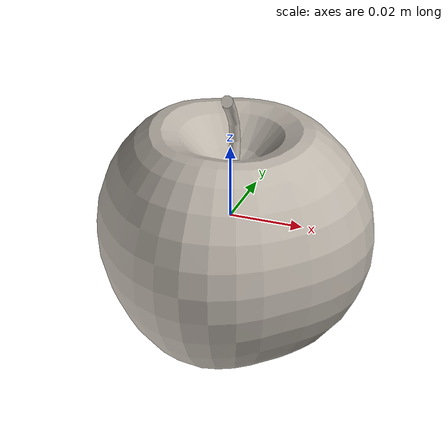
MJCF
<mujoco model="apple_7">
  <asset>
    <mesh file="visual/model_normalized_0.obj" name="apple_7_model_normalized_0_vis" scale="0.07500000000000001 0.07500000000000001 0.07500000000000001" refquat="1.0 0.0 0.0 0.0" />
    <mesh file="collision/model_normalized_collision_22.obj" name="apple_7_model_normalized_collision_22._coll" scale="0.07500000000000001 0.07500000000000001 0.07500000000000001" refquat="1.0 0.0 0.0 0.0" />
    <mesh file="collision/model_normalized_collision_23.obj" name="apple_7_model_normalized_collision_23._coll" scale="0.07500000000000001 0.07500000000000001 0.07500000000000001" refquat="1.0 0.0 0.0 0.0" />
    <mesh file="collision/model_normalized_collision_21.obj" name="apple_7_model_normalized_collision_21._coll" scale="0.07500000000000001 0.07500000000000001 0.07500000000000001" refquat="1.0 0.0 0.0 0.0" />
    <mesh file="collision/model_normalized_collision_20.obj" name="apple_7_model_normalized_collision_20._coll" scale="0.07500000000000001 0.07500000000000001 0.07500000000000001" refquat="1.0 0.0 0.0 0.0" />
    <mesh file="collision/model_normalized_collision_24.obj" name="apple_7_model_normalized_collision_24._coll" scale="0.07500000000000001 0.07500000000000001 0.07500000000000001" refquat="1.0 0.0 0.0 0.0" />
    <mesh file="collision/model_normalized_collision_30.obj" name="apple_7_model_normalized_collision_30._coll" scale="0.07500000000000001 0.07500000000000001 0.07500000000000001" refquat="1.0 0.0 0.0 0.0" />
    <mesh file="collision/model_normalized_collision_18.obj" name="apple_7_model_normalized_collision_18._coll" scale="0.07500000000000001 0.07500000000000001 0.07500000000000001" refquat="1.0 0.0 0.0 0.0" />
    <mesh file="collision/model_normalized_collision_19.obj" name="apple_7_model_normalized_collision_19._coll" scale="0.07500000000000001 0.07500000000000001 0.07500000000000001" refquat="1.0 0.0 0.0 0.0" />
    <mesh file="collision/model_normalized_collision_31.obj" name="apple_7_model_normalized_collision_31._coll" scale="0.07500000000000001 0.07500000000000001 0.07500000000000001" refquat="1.0 0.0 0.0 0.0" />
    <mesh file="collision/model_normalized_collision_25.obj" name="apple_7_model_normalized_collision_25._coll" scale="0.07500000000000001 0.07500000000000001 0.07500000000000001" refquat="1.0 0.0 0.0 0.0" />
    <mesh file="collision/model_normalized_collision_27.obj" name="apple_7_model_normalized_collision_27._coll" scale="0.07500000000000001 0.07500000000000001 0.07500000000000001" refquat="1.0 0.0 0.0 0.0" />
    <mesh file="collision/model_normalized_collision_26.obj" name="apple_7_model_normalized_collision_26._coll" scale="0.07500000000000001 0.07500000000000001 0.07500000000000001" refquat="1.0 0.0 0.0 0.0" />
    <mesh file="collision/model_normalized_collision_9.obj" name="apple_7_model_normalized_collision_9._coll" scale="0.07500000000000001 0.07500000000000001 0.07500000000000001" refquat="1.0 0.0 0.0 0.0" />
    <mesh file="collision/model_normalized_collision_8.obj" name="apple_7_model_normalized_collision_8._coll" scale="0.07500000000000001 0.07500000000000001 0.07500000000000001" refquat="1.0 0.0 0.0 0.0" />
    <mesh file="collision/model_normalized_collision_6.obj" name="apple_7_model_normalized_collision_6._coll" scale="0.07500000000000001 0.07500000000000001 0.07500000000000001" refquat="1.0 0.0 0.0 0.0" />
    <mesh file="collision/model_normalized_collision_7.obj" name="apple_7_model_normalized_collision_7._coll" scale="0.07500000000000001 0.07500000000000001 0.07500000000000001" refquat="1.0 0.0 0.0 0.0" />
    <mesh file="collision/model_normalized_collision_5.obj" name="apple_7_model_normalized_collision_5._coll" scale="0.07500000000000001 0.07500000000000001 0.07500000000000001" refquat="1.0 0.0 0.0 0.0" />
    <mesh file="collision/model_normalized_collision_4.obj" name="apple_7_model_normalized_collision_4._coll" scale="0.07500000000000001 0.07500000000000001 0.07500000000000001" refquat="1.0 0.0 0.0 0.0" />
    <mesh file="collision/model_normalized_collision_0.obj" name="apple_7_model_normalized_collision_0._coll" scale="0.07500000000000001 0.07500000000000001 0.07500000000000001" refquat="1.0 0.0 0.0 0.0" />
    <mesh file="collision/model_normalized_collision_1.obj" name="apple_7_model_normalized_collision_1._coll" scale="0.07500000000000001 0.07500000000000001 0.07500000000000001" refquat="1.0 0.0 0.0 0.0" />
    <mesh file="collision/model_normalized_collision_3.obj" name="apple_7_model_normalized_collision_3._coll" scale="0.07500000000000001 0.07500000000000001 0.07500000000000001" refquat="1.0 0.0 0.0 0.0" />
    <mesh file="collision/model_normalized_collision_2.obj" name="apple_7_model_normalized_collision_2._coll" scale="0.07500000000000001 0.07500000000000001 0.07500000000000001" refquat="1.0 0.0 0.0 0.0" />
    <mesh file="collision/model_normalized_collision_17.obj" name="apple_7_model_normalized_collision_17._coll" scale="0.07500000000000001 0.07500000000000001 0.07500000000000001" refquat="1.0 0.0 0.0 0.0" />
    <mesh file="collision/model_normalized_collision_16.obj" name="apple_7_model_normalized_collision_16._coll" scale="0.07500000000000001 0.07500000000000001 0.07500000000000001" refquat="1.0 0.0 0.0 0.0" />
    <mesh file="collision/model_normalized_collision_28.obj" name="apple_7_model_normalized_collision_28._coll" scale="0.07500000000000001 0.07500000000000001 0.07500000000000001" refquat="1.0 0.0 0.0 0.0" />
    <mesh file="collision/model_normalized_collision_14.obj" name="apple_7_model_normalized_collision_14._coll" scale="0.07500000000000001 0.07500000000000001 0.07500000000000001" refquat="1.0 0.0 0.0 0.0" />
    <mesh file="collision/model_normalized_collision_15.obj" name="apple_7_model_normalized_collision_15._coll" scale="0.07500000000000001 0.07500000000000001 0.07500000000000001" refquat="1.0 0.0 0.0 0.0" />
    <mesh file="collision/model_normalized_collision_29.obj" name="apple_7_model_normalized_collision_29._coll" scale="0.07500000000000001 0.07500000000000001 0.07500000000000001" refquat="1.0 0.0 0.0 0.0" />
    <mesh file="collision/model_normalized_collision_11.obj" name="apple_7_model_normalized_collision_11._coll" scale="0.07500000000000001 0.07500000000000001 0.07500000000000001" refquat="1.0 0.0 0.0 0.0" />
    <mesh file="collision/model_normalized_collision_10.obj" name="apple_7_model_normalized_collision_10._coll" scale="0.07500000000000001 0.07500000000000001 0.07500000000000001" refquat="1.0 0.0 0.0 0.0" />
    <mesh file="collision/model_normalized_collision_12.obj" name="apple_7_model_normalized_collision_12._coll" scale="0.07500000000000001 0.07500000000000001 0.07500000000000001" refquat="1.0 0.0 0.0 0.0" />
    <mesh file="collision/model_normalized_collision_13.obj" name="apple_7_model_normalized_collision_13._coll" scale="0.07500000000000001 0.07500000000000001 0.07500000000000001" refquat="1.0 0.0 0.0 0.0" />
    <texture type="2d" name="apple_7_image0" file="visual/image0.png" />
    <material name="apple_7_Apple.001" texture="apple_7_image0" specular="0.5" shininess="0.25" />
  </asset>
  <worldbody>
    <body>
      <joint name="apple_7_object_joint" type="free" damping="1." /><body name="apple_7_object">
        <geom solimp="0.998 0.998 0.001" solref="0.001 1" density="5" friction="0.95 0.3 0.1" type="mesh" mesh="apple_7_model_normalized_0_vis" conaffinity="0" contype="0" group="1" material="apple_7_Apple.001" />
        <geom solimp="0.998 0.998 0.001" solref="0.001 1" density="5" friction="0.95 0.3 0.1" type="mesh" mesh="apple_7_model_normalized_collision_22._coll" group="0" rgba="0.8 0.8 0.8 0.0" />
        <geom solimp="0.998 0.998 0.001" solref="0.001 1" density="5" friction="0.95 0.3 0.1" type="mesh" mesh="apple_7_model_normalized_collision_23._coll" group="0" rgba="0.8 0.8 0.8 0.0" />
        <geom solimp="0.998 0.998 0.001" solref="0.001 1" density="5" friction="0.95 0.3 0.1" type="mesh" mesh="apple_7_model_normalized_collision_21._coll" group="0" rgba="0.8 0.8 0.8 0.0" />
        <geom solimp="0.998 0.998 0.001" solref="0.001 1" density="5" friction="0.95 0.3 0.1" type="mesh" mesh="apple_7_model_normalized_collision_20._coll" group="0" rgba="0.8 0.8 0.8 0.0" />
        <geom solimp="0.998 0.998 0.001" solref="0.001 1" density="5" friction="0.95 0.3 0.1" type="mesh" mesh="apple_7_model_normalized_collision_24._coll" group="0" rgba="0.8 0.8 0.8 0.0" />
        <geom solimp="0.998 0.998 0.001" solref="0.001 1" density="5" friction="0.95 0.3 0.1" type="mesh" mesh="apple_7_model_normalized_collision_30._coll" group="0" rgba="0.8 0.8 0.8 0.0" />
        <geom solimp="0.998 0.998 0.001" solref="0.001 1" density="5" friction="0.95 0.3 0.1" type="mesh" mesh="apple_7_model_normalized_collision_18._coll" group="0" rgba="0.8 0.8 0.8 0.0" />
        <geom solimp="0.998 0.998 0.001" solref="0.001 1" density="5" friction="0.95 0.3 0.1" type="mesh" mesh="apple_7_model_normalized_collision_19._coll" group="0" rgba="0.8 0.8 0.8 0.0" />
        <geom solimp="0.998 0.998 0.001" solref="0.001 1" density="5" friction="0.95 0.3 0.1" type="mesh" mesh="apple_7_model_normalized_collision_31._coll" group="0" rgba="0.8 0.8 0.8 0.0" />
        <geom solimp="0.998 0.998 0.001" solref="0.001 1" density="5" friction="0.95 0.3 0.1" type="mesh" mesh="apple_7_model_normalized_collision_25._coll" group="0" rgba="0.8 0.8 0.8 0.0" />
        <geom solimp="0.998 0.998 0.001" solref="0.001 1" density="5" friction="0.95 0.3 0.1" type="mesh" mesh="apple_7_model_normalized_collision_27._coll" group="0" rgba="0.8 0.8 0.8 0.0" />
        <geom solimp="0.998 0.998 0.001" solref="0.001 1" density="5" friction="0.95 0.3 0.1" type="mesh" mesh="apple_7_model_normalized_collision_26._coll" group="0" rgba="0.8 0.8 0.8 0.0" />
        <geom solimp="0.998 0.998 0.001" solref="0.001 1" density="5" friction="0.95 0.3 0.1" type="mesh" mesh="apple_7_model_normalized_collision_9._coll" group="0" rgba="0.8 0.8 0.8 0.0" />
        <geom solimp="0.998 0.998 0.001" solref="0.001 1" density="5" friction="0.95 0.3 0.1" type="mesh" mesh="apple_7_model_normalized_collision_8._coll" group="0" rgba="0.8 0.8 0.8 0.0" />
        <geom solimp="0.998 0.998 0.001" solref="0.001 1" density="5" friction="0.95 0.3 0.1" type="mesh" mesh="apple_7_model_normalized_collision_6._coll" group="0" rgba="0.8 0.8 0.8 0.0" />
        <geom solimp="0.998 0.998 0.001" solref="0.001 1" density="5" friction="0.95 0.3 0.1" type="mesh" mesh="apple_7_model_normalized_collision_7._coll" group="0" rgba="0.8 0.8 0.8 0.0" />
        <geom solimp="0.998 0.998 0.001" solref="0.001 1" density="5" friction="0.95 0.3 0.1" type="mesh" mesh="apple_7_model_normalized_collision_5._coll" group="0" rgba="0.8 0.8 0.8 0.0" />
        <geom solimp="0.998 0.998 0.001" solref="0.001 1" density="5" friction="0.95 0.3 0.1" type="mesh" mesh="apple_7_model_normalized_collision_4._coll" group="0" rgba="0.8 0.8 0.8 0.0" />
        <geom solimp="0.998 0.998 0.001" solref="0.001 1" density="5" friction="0.95 0.3 0.1" type="mesh" mesh="apple_7_model_normalized_collision_0._coll" group="0" rgba="0.8 0.8 0.8 0.0" />
        <geom solimp="0.998 0.998 0.001" solref="0.001 1" density="5" friction="0.95 0.3 0.1" type="mesh" mesh="apple_7_model_normalized_collision_1._coll" group="0" rgba="0.8 0.8 0.8 0.0" />
        <geom solimp="0.998 0.998 0.001" solref="0.001 1" density="5" friction="0.95 0.3 0.1" type="mesh" mesh="apple_7_model_normalized_collision_3._coll" group="0" rgba="0.8 0.8 0.8 0.0" />
        <geom solimp="0.998 0.998 0.001" solref="0.001 1" density="5" friction="0.95 0.3 0.1" type="mesh" mesh="apple_7_model_normalized_collision_2._coll" group="0" rgba="0.8 0.8 0.8 0.0" />
        <geom solimp="0.998 0.998 0.001" solref="0.001 1" density="5" friction="0.95 0.3 0.1" type="mesh" mesh="apple_7_model_normalized_collision_17._coll" group="0" rgba="0.8 0.8 0.8 0.0" />
        <geom solimp="0.998 0.998 0.001" solref="0.001 1" density="5" friction="0.95 0.3 0.1" type="mesh" mesh="apple_7_model_normalized_collision_16._coll" group="0" rgba="0.8 0.8 0.8 0.0" />
        <geom solimp="0.998 0.998 0.001" solref="0.001 1" density="5" friction="0.95 0.3 0.1" type="mesh" mesh="apple_7_model_normalized_collision_28._coll" group="0" rgba="0.8 0.8 0.8 0.0" />
        <geom solimp="0.998 0.998 0.001" solref="0.001 1" density="5" friction="0.95 0.3 0.1" type="mesh" mesh="apple_7_model_normalized_collision_14._coll" group="0" rgba="0.8 0.8 0.8 0.0" />
        <geom solimp="0.998 0.998 0.001" solref="0.001 1" density="5" friction="0.95 0.3 0.1" type="mesh" mesh="apple_7_model_normalized_collision_15._coll" group="0" rgba="0.8 0.8 0.8 0.0" />
        <geom solimp="0.998 0.998 0.001" solref="0.001 1" density="5" friction="0.95 0.3 0.1" type="mesh" mesh="apple_7_model_normalized_collision_29._coll" group="0" rgba="0.8 0.8 0.8 0.0" />
        <geom solimp="0.998 0.998 0.001" solref="0.001 1" density="5" friction="0.95 0.3 0.1" type="mesh" mesh="apple_7_model_normalized_collision_11._coll" group="0" rgba="0.8 0.8 0.8 0.0" />
        <geom solimp="0.998 0.998 0.001" solref="0.001 1" density="5" friction="0.95 0.3 0.1" type="mesh" mesh="apple_7_model_normalized_collision_10._coll" group="0" rgba="0.8 0.8 0.8 0.0" />
        <geom solimp="0.998 0.998 0.001" solref="0.001 1" density="5" friction="0.95 0.3 0.1" type="mesh" mesh="apple_7_model_normalized_collision_12._coll" group="0" rgba="0.8 0.8 0.8 0.0" />
        <geom solimp="0.998 0.998 0.001" solref="0.001 1" density="5" friction="0.95 0.3 0.1" type="mesh" mesh="apple_7_model_normalized_collision_13._coll" group="0" rgba="0.8 0.8 0.8 0.0" />
      </body>
      <site rgba="0 0 0 0" size="0.005" pos="-4.941712499999946e-05 -9.589312500000031e-05 -0.03505636275000001" name="apple_7_bottom_site" />
      <site rgba="0 0 0 0" size="0.005" pos="-4.941712499999946e-05 -9.589312500000031e-05 0.03543268275000001" name="apple_7_top_site" />
      <site rgba="0 0 0 0" size="0.005" pos="0.03684147975000001 0.036766213500000006 0.00018815999999999836" name="apple_7_horizontal_radius_site" />
    </body>
  </worldbody>
</mujoco>
